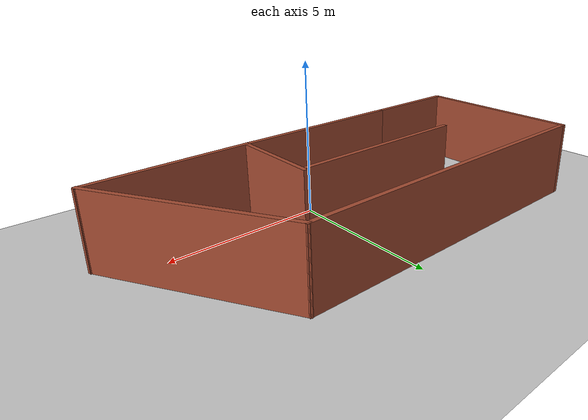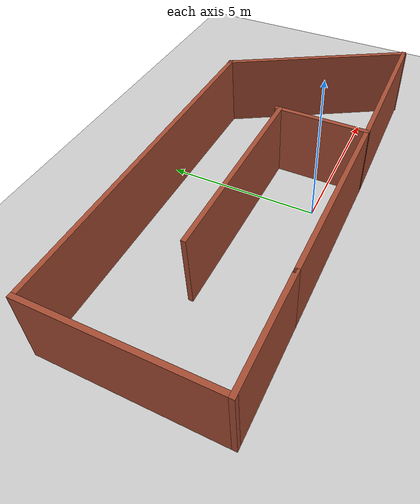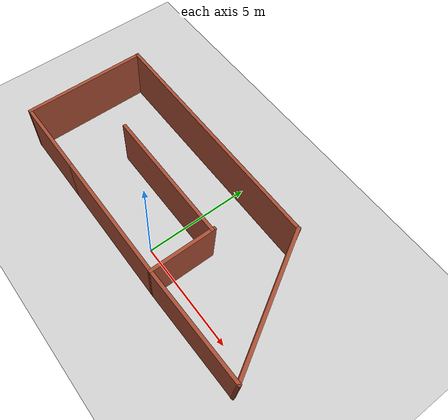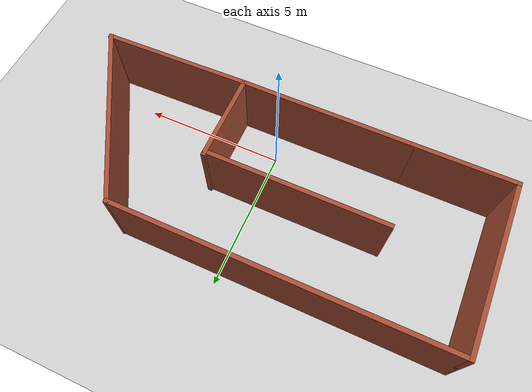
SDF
<sdf version="1.7">
 <world name="default">
  <light name="sun" type="directional">
   <pose>0 0 10 0 -0 0</pose>
   <diffuse>0.8 0.8 0.8 1</diffuse>
   <specular>0.2 0.2 0.2 1</specular>
   <attenuation>
    <range>1000</range>
    <constant>0.9</constant>
    <linear>0.01</linear>
    <quadratic>0.001</quadratic>
   </attenuation>
   <direction>-0.5 0.1 -0.9</direction>
   <spot><inner_angle>0</inner_angle><outer_angle>0</outer_angle><falloff>0</falloff></spot>
  </light>
  <model name="ground_plane">
   <static>1</static>
   <link name="link">
    <collision name="collision">
     <geometry><plane><normal>0 0 1</normal><size>100 100</size></plane></geometry>
     <surface><friction><ode><mu>100</mu><mu2>50</mu2></ode></friction></surface>
    </collision>
    <visual name="visual">
     <cast_shadows>0</cast_shadows>
     <geometry><plane><normal>0 0 1</normal><size>100 100</size></plane></geometry>
     <material>
      <script><uri>file://media/materials/scripts/gazebo.material</uri><name>Gazebo/Grey</name></script>
     </material>
    </visual>
   </link>
  </model>
  <gravity>0 0 -9.8</gravity>
  <magnetic_field>6e-06 2.3e-05 -4.2e-05</magnetic_field>
  <atmosphere type="adiabatic"/>
  <physics type="ode">
   <max_step_size>0.001</max_step_size>
   <real_time_factor>1</real_time_factor>
   <real_time_update_rate>1000</real_time_update_rate>
  </physics>
  <scene><ambient>0.4 0.4 0.4 1</ambient><background>0.7 0.7 0.7 1</background><shadows>1</shadows></scene>
  <audio><device>default</device></audio>
  <spherical_coordinates>
   <surface_model>EARTH_WGS84</surface_model>
   <latitude_deg>0</latitude_deg>
   <longitude_deg>0</longitude_deg>
   <elevation>0</elevation>
   <heading_deg>0</heading_deg>
  </spherical_coordinates>
  <model name="TFC1">
   <pose>-0.400938 1.80476 0 0 -0 0</pose>
   <link name="Wall_0">
    <collision name="Wall_0_Collision">
     <geometry><box><size>6 0.15 2.5</size></box></geometry>
     <pose>0 0 1.25 0 -0 0</pose>
    </collision>
    <visual name="Wall_0_Visual">
     <pose>0 0 1.25 0 -0 0</pose>
     <geometry><box><size>6 0.15 2.5</size></box></geometry>
     <material>
      <script><uri>file://media/materials/scripts/gazebo.material</uri><name>Gazebo/Bricks</name></script>
      <ambient>1 1 1 1</ambient>
     </material>
     <meta><layer>0</layer></meta>
    </visual>
    <pose>-0.876226 -2.81299 0 0 -0 0</pose>
   </link>
   <link name="Wall_1">
    <collision name="Wall_1_Collision">
     <geometry><box><size>3.11582 0.15 2.5</size></box></geometry>
     <pose>0 0 1.25 0 -0 0</pose>
    </collision>
    <visual name="Wall_1_Visual">
     <pose>0 0 1.25 0 -0 0</pose>
     <geometry><box><size>3.11582 0.15 2.5</size></box></geometry>
     <material>
      <script><uri>file://media/materials/scripts/gazebo.material</uri><name>Gazebo/Bricks</name></script>
      <ambient>1 1 1 1</ambient>
     </material>
     <meta><layer>0</layer></meta>
    </visual>
    <pose>2.04572 -1.33008 0 0 -0 1.57285</pose>
   </link>
   <link name="Wall_2">
    <collision name="Wall_2_Collision">
     <geometry><box><size>6.25 0.15 2.5</size></box></geometry>
     <pose>0 0 1.25 0 -0 0</pose>
    </collision>
    <visual name="Wall_2_Visual">
     <pose>0 0 1.25 0 -0 0</pose>
     <geometry><box><size>6.25 0.15 2.5</size></box></geometry>
     <material>
      <script><uri>file://media/materials/scripts/gazebo.material</uri><name>Gazebo/Bricks</name></script>
      <ambient>1 1 1 1</ambient>
     </material>
     <meta><layer>0</layer></meta>
    </visual>
    <pose>-1.00733 0.072373 0 0 -0 3.14159</pose>
   </link>
   <link name="Wall_4">
    <collision name="Wall_4_Collision">
     <geometry><box><size>3.5 0.15 2.5</size></box></geometry>
     <pose>0 0 1.25 0 -0 0</pose>
    </collision>
    <visual name="Wall_4_Visual">
     <pose>0 0 1.25 0 -0 0</pose>
     <geometry><box><size>3.5 0.15 2.5</size></box></geometry>
     <material>
      <script><uri>file://media/materials/scripts/gazebo.material</uri><name>Gazebo/Bricks</name></script>
      <ambient>1 1 1 1</ambient>
     </material>
     <meta><layer>0</layer></meta>
    </visual>
    <pose>-5.47623 -2.81299 0 0 -0 3.14159</pose>
   </link>
   <link name="Wall_5">
    <collision name="Wall_5_Collision">
     <geometry><box><size>5.75 0.15 2.5</size></box></geometry>
     <pose>0 0 1.25 0 -0 0</pose>
    </collision>
    <visual name="Wall_5_Visual">
     <pose>0 0 1.25 0 -0 0</pose>
     <geometry><box><size>5.75 0.15 2.5</size></box></geometry>
     <material>
      <script><uri>file://media/materials/scripts/gazebo.material</uri><name>Gazebo/Bricks</name></script>
      <ambient>1 1 1 1</ambient>
     </material>
     <meta><layer>0</layer></meta>
    </visual>
    <pose>-7.15123 -0.012989 0 0 -0 1.5708</pose>
   </link>
   <link name="Wall_6">
    <collision name="Wall_6_Collision">
     <geometry><box><size>11.25 0.15 2.5</size></box></geometry>
     <pose>0 0 1.25 0 -0 0</pose>
    </collision>
    <visual name="Wall_6_Visual">
     <pose>0 0 1.25 0 -0 0</pose>
     <geometry><box><size>11.25 0.15 2.5</size></box></geometry>
     <material>
      <script><uri>file://media/materials/scripts/gazebo.material</uri><name>Gazebo/Bricks</name></script>
      <ambient>1 1 1 1</ambient>
     </material>
     <meta><layer>0</layer></meta>
    </visual>
    <pose>-1.60123 2.78701 0 0 -0 0</pose>
   </link>
   <link name="Wall_7">
    <collision name="Wall_7_Collision">
     <geometry><box><size>6.5 0.15 2.5</size></box></geometry>
     <pose>0 0 1.25 0 -0 0</pose>
    </collision>
    <visual name="Wall_7_Visual">
     <pose>0 0 1.25 0 -0 0</pose>
     <geometry><box><size>6.5 0.15 2.5</size></box></geometry>
     <material>
      <script><uri>file://media/materials/scripts/gazebo.material</uri><name>Gazebo/Bricks</name></script>
      <ambient>1 1 1 1</ambient>
     </material>
     <meta><layer>0</layer></meta>
    </visual>
    <pose>5.53627 0.03738 0 0 -0 -1.0472</pose>
   </link>
   <link name="Wall_8">
    <collision name="Wall_8_Collision">
     <geometry><box><size>5.226 0.15 2.5</size></box></geometry>
     <pose>0 0 1.25 0 -0 0</pose>
    </collision>
    <visual name="Wall_8_Visual">
     <pose>0 0 1.25 0 -0 0</pose>
     <geometry><box><size>5.226 0.15 2.5</size></box></geometry>
     <material>
      <script><uri>file://media/materials/scripts/gazebo.material</uri><name>Gazebo/Bricks</name></script>
      <ambient>1 1 1 1</ambient>
     </material>
     <meta><layer>0</layer></meta>
    </visual>
    <pose>4.58627 -2.76262 0 0 -0 -3.12175</pose>
   </link>
   <static>1</static>
  </model>
 </world>
</sdf>
